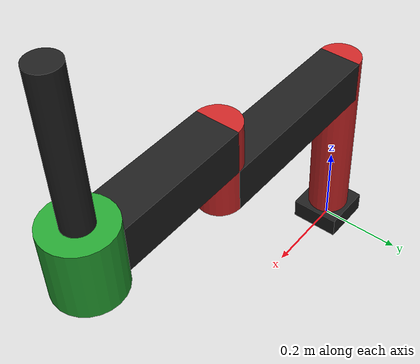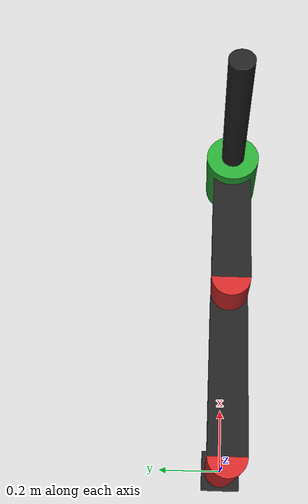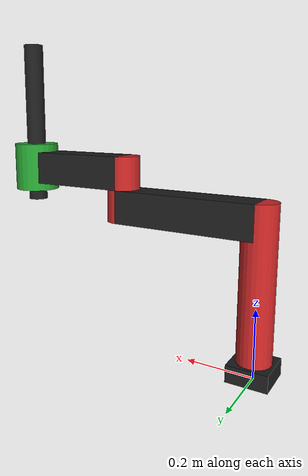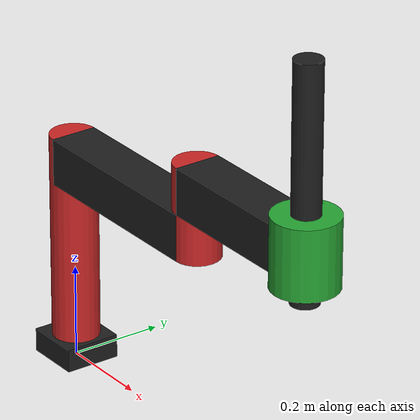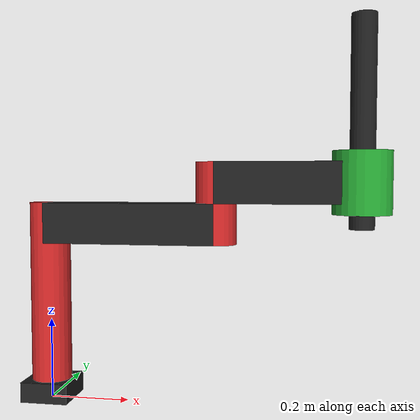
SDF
<sdf version='1.4'>
  <model name='scara'>
    <link name='base_link'>
      <pose frame=''>0 0 0 0 -0 0</pose>
      <inertial>
        <pose frame=''>0 0 0.025 0 -0 0</pose>
        <mass>1</mass>
        <inertia>
          <ixx>1</ixx>
          <ixy>0</ixy>
          <ixz>0</ixz>
          <iyy>1</iyy>
          <iyz>0</iyz>
          <izz>1</izz>
        </inertia>
      </inertial>
      <collision name='base_link_collision'>
        <pose frame=''>0 0 0.025 0 -0 0</pose>
        <geometry>
          <box>
            <size>0.12 0.12 0.05</size>
          </box>
        </geometry>
        <surface>
          <contact>
            <ode/>
          </contact>
          <friction>
            <ode/>
          </friction>
        </surface>
      </collision>
      <visual name='base_link_visual'>
        <pose frame=''>0 0 0.025 0 -0 0</pose>
        <geometry>
          <box>
            <size>0.12 0.12 0.05</size>
          </box>
        </geometry>
        <material>
          <script>
            <name>Gazebo/Black</name>
            <uri>file://media/materials/scripts/gazebo.material</uri>
          </script>
        </material>
      </visual>
      <gravity>1</gravity>
      <velocity_decay/>
    </link>
    <joint name='base2world' type='fixed'>
      <child>base_link</child>
      <parent>world</parent>
    </joint>
    <link name='revolute1'>
      <pose frame=''>0 0 0.05 0 -0 0</pose>
      <inertial>
        <pose frame=''>0.10625 0 0.225 0 -0 0</pose>
        <mass>1</mass>
        <inertia>
          <ixx>1.03063</ixx>
          <ixy>0</ixy>
          <ixz>-0.0185938</ixz>
          <iyy>1.04191</iyy>
          <iyz>0</iyz>
          <izz>1.01129</izz>
        </inertia>
      </inertial>
      <collision name='revolute1_collision'>
        <pose frame=''>0 0 0.225 0 -0 0</pose>
        <geometry>
          <cylinder>
            <length>0.45</length>
            <radius>0.05</radius>
          </cylinder>
        </geometry>
        <surface>
          <contact>
            <ode/>
          </contact>
          <friction>
            <ode/>
          </friction>
        </surface>
      </collision>
      <collision name='revolute1_fixed_joint_lump__link1_collision_1'>
        <pose frame=''>0.2125 0 0.4 3.14159 1.57079 3.14159</pose>
        <geometry>
          <box>
            <size>0.1 0.1 0.425</size>
          </box>
        </geometry>
        <surface>
          <contact>
            <ode/>
          </contact>
          <friction>
            <ode/>
          </friction>
        </surface>
      </collision>
      <visual name='revolute1_visual'>
        <pose frame=''>0 0 0.225 0 -0 0</pose>
        <geometry>
          <cylinder>
            <length>0.45</length>
            <radius>0.05</radius>
          </cylinder>
        </geometry>
        <material>
          <script>
            <name>Gazebo/Red</name>
            <uri>file://media/materials/scripts/gazebo.material</uri>
          </script>
        </material>
      </visual>
      <visual name='revolute1_fixed_joint_lump__link1_visual_1'>
        <pose frame=''>0.2125 0 0.4 3.14159 1.57079 3.14159</pose>
        <geometry>
          <box>
            <size>0.1 0.1 0.425</size>
          </box>
        </geometry>
        <material>
          <script>
            <name>Gazebo/Black</name>
            <uri>file://media/materials/scripts/gazebo.material</uri>
          </script>
        </material>
      </visual>
      <velocity_decay/>
      <gravity>1</gravity>
      <velocity_decay/>
    </link>
    <joint name='joint1' type='revolute'>
      <child>revolute1</child>
      <parent>base_link</parent>
      <axis>
        <xyz>0 0 1</xyz>
        <limit>
          <lower>-1e+16</lower>
          <upper>1e+16</upper>
        </limit>
        <dynamics>
          <damping>0.2</damping>
          <friction>0.1</friction>
          <spring_reference>0</spring_reference>
          <spring_stiffness>0</spring_stiffness>
        </dynamics>
        <use_parent_model_frame>1</use_parent_model_frame>
      </axis>
    </joint>
    <link name='revolute2'>
      <pose frame=''>0.425 0 0.5 0 -0 0</pose>
      <inertial>
        <pose frame=''>0.1725 0 0.033333 0 -0 0</pose>
        <mass>1.5</mass>
        <inertia>
          <ixx>1.50083</ixx>
          <ixy>0</ixy>
          <ixz>-0.0043125</ixz>
          <iyy>1.53059</iyy>
          <iyz>0</iyz>
          <izz>1.52976</izz>
        </inertia>
      </inertial>
      <collision name='revolute2_collision'>
        <pose frame=''>0 0 0 0 -0 0</pose>
        <geometry>
          <cylinder>
            <length>0.2</length>
            <radius>0.05</radius>
          </cylinder>
        </geometry>
        <surface>
          <contact>
            <ode/>
          </contact>
          <friction>
            <ode/>
          </friction>
        </surface>
      </collision>
      <collision name='revolute2_fixed_joint_lump__link2_collision_1'>
        <pose frame=''>0.1725 0 0.05 3.14159 1.57079 3.14159</pose>
        <geometry>
          <box>
            <size>0.1 0.1 0.345</size>
          </box>
        </geometry>
        <surface>
          <contact>
            <ode/>
          </contact>
          <friction>
            <ode/>
          </friction>
        </surface>
      </collision>
      <collision name='revolute2_fixed_joint_lump__prismatic3_collision_2'>
        <pose frame=''>0.345 0 0.05 3.14 -0 0</pose>
        <geometry>
          <cylinder>
            <length>0.15</length>
            <radius>0.07</radius>
          </cylinder>
        </geometry>
        <surface>
          <contact>
            <ode/>
          </contact>
          <friction>
            <ode/>
          </friction>
        </surface>
      </collision>
      <visual name='revolute2_visual'>
        <pose frame=''>0 0 0 0 -0 0</pose>
        <geometry>
          <cylinder>
            <length>0.2</length>
            <radius>0.05</radius>
          </cylinder>
        </geometry>
        <material>
          <script>
            <name>Gazebo/Red</name>
            <uri>file://media/materials/scripts/gazebo.material</uri>
          </script>
        </material>
      </visual>
      <visual name='revolute2_fixed_joint_lump__link2_visual_1'>
        <pose frame=''>0.1725 0 0.05 3.14159 1.57079 3.14159</pose>
        <geometry>
          <box>
            <size>0.1 0.1 0.345</size>
          </box>
        </geometry>
        <material>
          <script>
            <name>Gazebo/Black</name>
            <uri>file://media/materials/scripts/gazebo.material</uri>
          </script>
        </material>
      </visual>
      <visual name='revolute2_fixed_joint_lump__prismatic3_visual_2'>
        <pose frame=''>0.345 0 0.05 3.14 -0 0</pose>
        <geometry>
          <cylinder>
            <length>0.15</length>
            <radius>0.07</radius>
          </cylinder>
        </geometry>
        <material>
          <script>
            <name>Gazebo/Green</name>
            <uri>file://media/materials/scripts/gazebo.material</uri>
          </script>
        </material>
      </visual>
      <velocity_decay/>
      <velocity_decay/>
      <gravity>1</gravity>
      <velocity_decay/>
    </link>
    <joint name='joint2' type='revolute'>
      <child>revolute2</child>
      <parent>revolute1</parent>
      <axis>
        <xyz>0 0 1</xyz>
        <limit>
          <lower>-1e+16</lower>
          <upper>1e+16</upper>
        </limit>
        <dynamics>
          <damping>0.2</damping>
          <friction>0.1</friction>
          <spring_reference>0</spring_reference>
          <spring_stiffness>0</spring_stiffness>
        </dynamics>
        <use_parent_model_frame>1</use_parent_model_frame>
      </axis>
    </joint>
    <link name='link3'>
      <pose frame=''>0.77 -0.000175 0.44 3.14 -0 0</pose>
      <inertial>
        <pose frame=''>0 0 -0.25 0 -0 0</pose>
        <mass>0.2</mass>
        <inertia>
          <ixx>0.2</ixx>
          <ixy>0</ixy>
          <ixz>0</ixz>
          <iyy>0.2</iyy>
          <iyz>0</iyz>
          <izz>0.2</izz>
        </inertia>
      </inertial>
      <collision name='link3_collision'>
        <pose frame=''>0 0 -0.25 0 -0 0</pose>
        <geometry>
          <cylinder>
            <length>0.5</length>
            <radius>0.03</radius>
          </cylinder>
        </geometry>
        <surface>
          <contact>
            <ode/>
          </contact>
          <friction>
            <ode/>
          </friction>
        </surface>
      </collision>
      <visual name='link3_visual'>
        <pose frame=''>0 0 -0.25 0 -0 0</pose>
        <geometry>
          <cylinder>
            <length>0.5</length>
            <radius>0.03</radius>
          </cylinder>
        </geometry>
        <material>
          <script>
            <name>Gazebo/Black</name>
            <uri>file://media/materials/scripts/gazebo.material</uri>
          </script>
        </material>
      </visual>
      <gravity>1</gravity>
      <velocity_decay/>
    </link>
    <joint name='joint3' type='prismatic'>
      <child>link3</child>
      <parent>revolute2</parent>
      <axis>
        <xyz>0 -0.001593 -0.999999</xyz>
        <limit>
          <lower>-1e-05</lower>
          <upper>0.3</upper>
          <effort>1000</effort>
          <velocity>0.1</velocity>
        </limit>
        <dynamics>
          <damping>0.4</damping>
          <friction>5</friction>
          <spring_reference>0</spring_reference>
          <spring_stiffness>0</spring_stiffness>
        </dynamics>
        <use_parent_model_frame>1</use_parent_model_frame>
      </axis>
    </joint>
    <static>0</static>
  </model>
</sdf>
